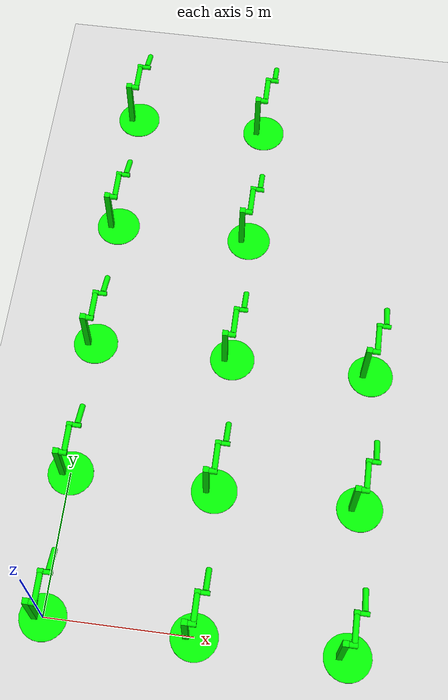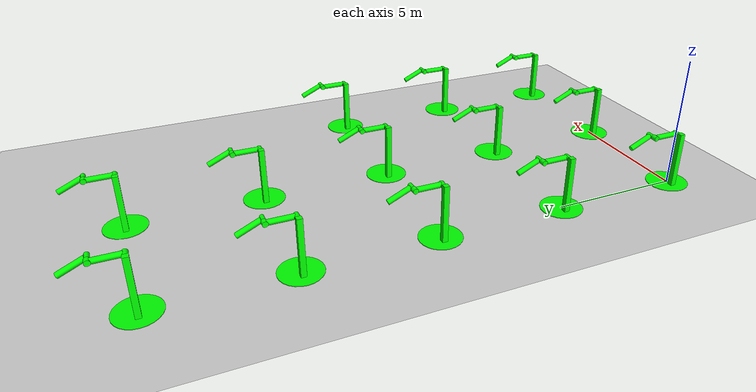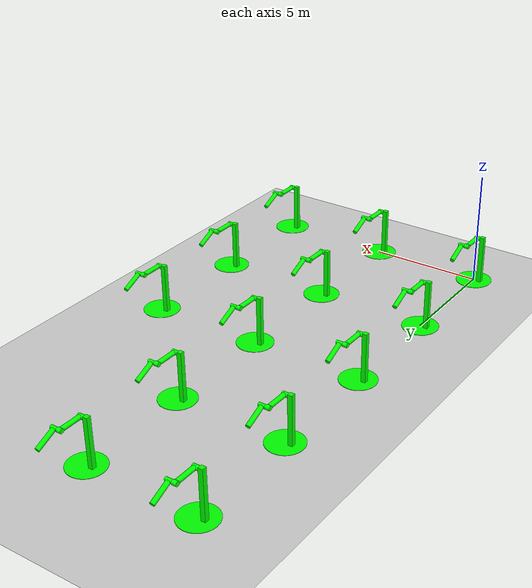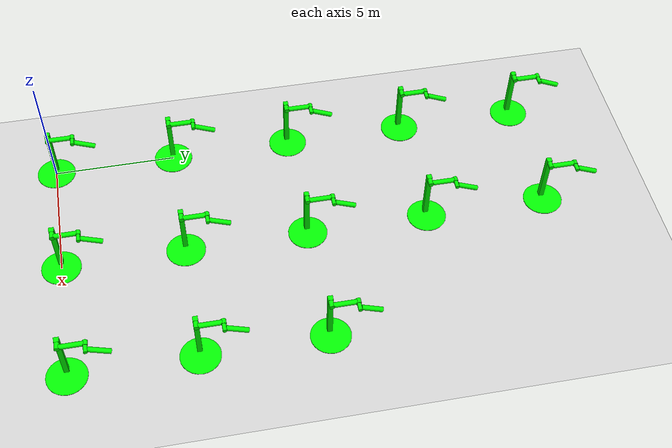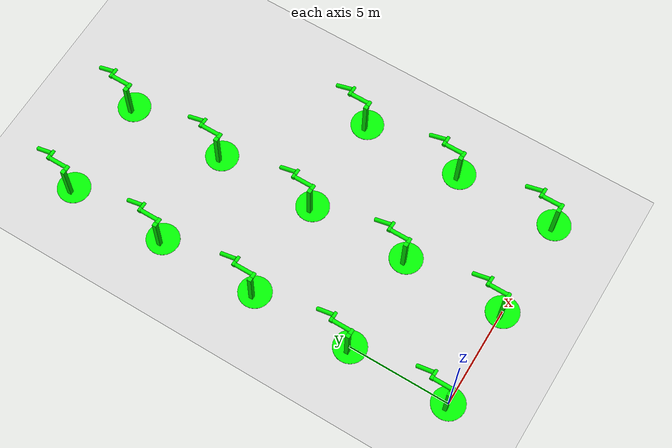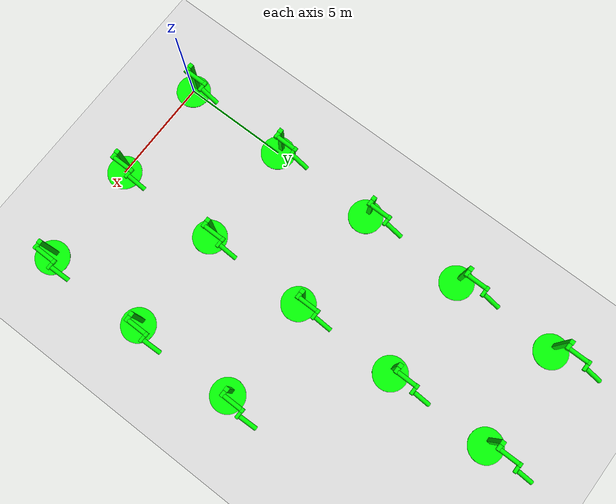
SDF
<sdf version="1.6">
 <world name="double_pendulums">
  <model name="ground_plane">
   <static>true</static>
   <link name="link">
    <collision name="collision">
     <geometry><plane><normal>0 0 1</normal><size>100 100</size></plane></geometry>
    </collision>
    <visual name="visual">
     <geometry><plane><normal>0 0 1</normal><size>100 100</size></plane></geometry>
     <material>
      <ambient>0.8 0.8 0.8 1</ambient>
      <diffuse>0.8 0.8 0.8 1</diffuse>
      <specular>0.8 0.8 0.8 1</specular>
     </material>
    </visual>
   </link>
  </model>
  <model name="dbl_pendulum_5">
   <link name="base">
    <inertial><mass>100</mass></inertial>
    <visual name="vis_plate_on_ground">
     <pose>0 0 0.01 0 0 0</pose>
     <geometry><cylinder><radius>0.8</radius><length>0.02</length></cylinder></geometry>
     <material><ambient>0 1 0 1</ambient><diffuse>0 1 0 1</diffuse><specular>0 1 0 1</specular></material>
    </visual>
    <visual name="vis_pole">
     <pose>-0.275 0 1.1 0 0 0</pose>
     <geometry><box><size>0.2 0.2 2.2</size></box></geometry>
     <material><ambient>0 1 0 1</ambient><diffuse>0 1 0 1</diffuse><specular>0 1 0 1</specular></material>
    </visual>
    <collision name="col_plate_on_ground">
     <pose>0 0 0.01 0 0 0</pose>
     <geometry><cylinder><radius>0.8</radius><length>0.02</length></cylinder></geometry>
    </collision>
    <collision name="col_pole">
     <pose>-0.275 0 1.1 0 0 0</pose>
     <geometry><box><size>0.2 0.2 2.2</size></box></geometry>
    </collision>
   </link>
   <link name="upper_link">
    <pose>0 0 2.1 -1.5708 0 0</pose>
    <inertial><pose>0 0 0.5 0 0 0</pose></inertial>
    <visual name="vis_upper_joint">
     <pose>-0.05 0 0 0 1.5708 0</pose>
     <geometry><cylinder><radius>0.1</radius><length>0.3</length></cylinder></geometry>
     <material><ambient>0 1 0 1</ambient><diffuse>0 1 0 1</diffuse><specular>0 1 0 1</specular></material>
    </visual>
    <visual name="vis_lower_joint">
     <pose>0 0 1.0 0 1.5708 0</pose>
     <geometry><cylinder><radius>0.1</radius><length>0.2</length></cylinder></geometry>
     <material><ambient>0 1 0 1</ambient><diffuse>0 1 0 1</diffuse><specular>0 1 0 1</specular></material>
    </visual>
    <visual name="vis_cylinder">
     <pose>0 0 0.5 0 0 0</pose>
     <geometry><cylinder><radius>0.1</radius><length>0.9</length></cylinder></geometry>
     <material><ambient>0 1 0 1</ambient><diffuse>0 1 0 1</diffuse><specular>0 1 0 1</specular></material>
    </visual>
    <collision name="col_upper_joint">
     <pose>-0.05 0 0 0 1.5708 0</pose>
     <geometry><cylinder><radius>0.1</radius><length>0.3</length></cylinder></geometry>
    </collision>
    <collision name="col_lower_joint">
     <pose>0 0 1.0 0 1.5708 0</pose>
     <geometry><cylinder><radius>0.1</radius><length>0.2</length></cylinder></geometry>
    </collision>
    <collision name="col_cylinder">
     <pose>0 0 0.5 0 0 0</pose>
     <geometry><cylinder><radius>0.1</radius><length>0.9</length></cylinder></geometry>
    </collision>
   </link>
   <link name="lower_link">
    <pose>0.25 1.0 2.1 -2 0 0</pose>
    <inertial><pose>0 0 0.5 0 0 0</pose></inertial>
    <visual name="vis_lower_joint">
     <pose>0 0 0 0 1.5708 0</pose>
     <geometry><cylinder><radius>0.08</radius><length>0.3</length></cylinder></geometry>
     <material><ambient>0 1 0 1</ambient><diffuse>0 1 0 1</diffuse><specular>0 1 0 1</specular></material>
    </visual>
    <visual name="vis_cylinder">
     <pose>0 0 0.5 0 0 0</pose>
     <geometry><cylinder><radius>0.1</radius><length>0.9</length></cylinder></geometry>
     <material><ambient>0 1 0 1</ambient><diffuse>0 1 0 1</diffuse><specular>0 1 0 1</specular></material>
    </visual>
    <collision name="col_lower_joint">
     <pose>0 0 0 0 1.5708 0</pose>
     <geometry><cylinder><radius>0.08</radius><length>0.3</length></cylinder></geometry>
    </collision>
    <collision name="col_cylinder">
     <pose>0 0 0.5 0 0 0</pose>
     <geometry><cylinder><radius>0.1</radius><length>0.9</length></cylinder></geometry>
    </collision>
   </link>
   <joint name="upper_joint" type="revolute">
    <parent>base</parent>
    <child>upper_link</child>
    <axis><xyz>1.0 0 0</xyz></axis>
   </joint>
   <joint name="lower_joint" type="revolute">
    <parent>upper_link</parent>
    <child>lower_link</child>
    <axis><xyz>1.0 0 0</xyz></axis>
   </joint>
  </model>
  <model name="dbl_pendulum_6">
   <pose>5 0 0 0 0 0</pose>
   <link name="base">
    <inertial><mass>100</mass></inertial>
    <visual name="vis_plate_on_ground">
     <pose>0 0 0.01 0 0 0</pose>
     <geometry><cylinder><radius>0.8</radius><length>0.02</length></cylinder></geometry>
     <material><ambient>0 1 0 1</ambient><diffuse>0 1 0 1</diffuse><specular>0 1 0 1</specular></material>
    </visual>
    <visual name="vis_pole">
     <pose>-0.275 0 1.1 0 0 0</pose>
     <geometry><box><size>0.2 0.2 2.2</size></box></geometry>
     <material><ambient>0 1 0 1</ambient><diffuse>0 1 0 1</diffuse><specular>0 1 0 1</specular></material>
    </visual>
    <collision name="col_plate_on_ground">
     <pose>0 0 0.01 0 0 0</pose>
     <geometry><cylinder><radius>0.8</radius><length>0.02</length></cylinder></geometry>
    </collision>
    <collision name="col_pole">
     <pose>-0.275 0 1.1 0 0 0</pose>
     <geometry><box><size>0.2 0.2 2.2</size></box></geometry>
    </collision>
   </link>
   <link name="upper_link">
    <pose>0 0 2.1 -1.5708 0 0</pose>
    <inertial><pose>0 0 0.5 0 0 0</pose></inertial>
    <visual name="vis_upper_joint">
     <pose>-0.05 0 0 0 1.5708 0</pose>
     <geometry><cylinder><radius>0.1</radius><length>0.3</length></cylinder></geometry>
     <material><ambient>0 1 0 1</ambient><diffuse>0 1 0 1</diffuse><specular>0 1 0 1</specular></material>
    </visual>
    <visual name="vis_lower_joint">
     <pose>0 0 1.0 0 1.5708 0</pose>
     <geometry><cylinder><radius>0.1</radius><length>0.2</length></cylinder></geometry>
     <material><ambient>0 1 0 1</ambient><diffuse>0 1 0 1</diffuse><specular>0 1 0 1</specular></material>
    </visual>
    <visual name="vis_cylinder">
     <pose>0 0 0.5 0 0 0</pose>
     <geometry><cylinder><radius>0.1</radius><length>0.9</length></cylinder></geometry>
     <material><ambient>0 1 0 1</ambient><diffuse>0 1 0 1</diffuse><specular>0 1 0 1</specular></material>
    </visual>
    <collision name="col_upper_joint">
     <pose>-0.05 0 0 0 1.5708 0</pose>
     <geometry><cylinder><radius>0.1</radius><length>0.3</length></cylinder></geometry>
    </collision>
    <collision name="col_lower_joint">
     <pose>0 0 1.0 0 1.5708 0</pose>
     <geometry><cylinder><radius>0.1</radius><length>0.2</length></cylinder></geometry>
    </collision>
    <collision name="col_cylinder">
     <pose>0 0 0.5 0 0 0</pose>
     <geometry><cylinder><radius>0.1</radius><length>0.9</length></cylinder></geometry>
    </collision>
   </link>
   <link name="lower_link">
    <pose>0.25 1.0 2.1 -2 0 0</pose>
    <inertial><pose>0 0 0.5 0 0 0</pose></inertial>
    <visual name="vis_lower_joint">
     <pose>0 0 0 0 1.5708 0</pose>
     <geometry><cylinder><radius>0.08</radius><length>0.3</length></cylinder></geometry>
     <material><ambient>0 1 0 1</ambient><diffuse>0 1 0 1</diffuse><specular>0 1 0 1</specular></material>
    </visual>
    <visual name="vis_cylinder">
     <pose>0 0 0.5 0 0 0</pose>
     <geometry><cylinder><radius>0.1</radius><length>0.9</length></cylinder></geometry>
     <material><ambient>0 1 0 1</ambient><diffuse>0 1 0 1</diffuse><specular>0 1 0 1</specular></material>
    </visual>
    <collision name="col_lower_joint">
     <pose>0 0 0 0 1.5708 0</pose>
     <geometry><cylinder><radius>0.08</radius><length>0.3</length></cylinder></geometry>
    </collision>
    <collision name="col_cylinder">
     <pose>0 0 0.5 0 0 0</pose>
     <geometry><cylinder><radius>0.1</radius><length>0.9</length></cylinder></geometry>
    </collision>
   </link>
   <joint name="upper_joint" type="revolute">
    <parent>base</parent>
    <child>upper_link</child>
    <axis><xyz>1.0 0 0</xyz></axis>
   </joint>
   <joint name="lower_joint" type="revolute">
    <parent>upper_link</parent>
    <child>lower_link</child>
    <axis><xyz>1.0 0 0</xyz></axis>
   </joint>
  </model>
  <model name="dbl_pendulum_7">
   <pose>10 0 0 0 0 0</pose>
   <link name="base">
    <inertial><mass>100</mass></inertial>
    <visual name="vis_plate_on_ground">
     <pose>0 0 0.01 0 0 0</pose>
     <geometry><cylinder><radius>0.8</radius><length>0.02</length></cylinder></geometry>
     <material><ambient>0 1 0 1</ambient><diffuse>0 1 0 1</diffuse><specular>0 1 0 1</specular></material>
    </visual>
    <visual name="vis_pole">
     <pose>-0.275 0 1.1 0 0 0</pose>
     <geometry><box><size>0.2 0.2 2.2</size></box></geometry>
     <material><ambient>0 1 0 1</ambient><diffuse>0 1 0 1</diffuse><specular>0 1 0 1</specular></material>
    </visual>
    <collision name="col_plate_on_ground">
     <pose>0 0 0.01 0 0 0</pose>
     <geometry><cylinder><radius>0.8</radius><length>0.02</length></cylinder></geometry>
    </collision>
    <collision name="col_pole">
     <pose>-0.275 0 1.1 0 0 0</pose>
     <geometry><box><size>0.2 0.2 2.2</size></box></geometry>
    </collision>
   </link>
   <link name="upper_link">
    <pose>0 0 2.1 -1.5708 0 0</pose>
    <inertial><pose>0 0 0.5 0 0 0</pose></inertial>
    <visual name="vis_upper_joint">
     <pose>-0.05 0 0 0 1.5708 0</pose>
     <geometry><cylinder><radius>0.1</radius><length>0.3</length></cylinder></geometry>
     <material><ambient>0 1 0 1</ambient><diffuse>0 1 0 1</diffuse><specular>0 1 0 1</specular></material>
    </visual>
    <visual name="vis_lower_joint">
     <pose>0 0 1.0 0 1.5708 0</pose>
     <geometry><cylinder><radius>0.1</radius><length>0.2</length></cylinder></geometry>
     <material><ambient>0 1 0 1</ambient><diffuse>0 1 0 1</diffuse><specular>0 1 0 1</specular></material>
    </visual>
    <visual name="vis_cylinder">
     <pose>0 0 0.5 0 0 0</pose>
     <geometry><cylinder><radius>0.1</radius><length>0.9</length></cylinder></geometry>
     <material><ambient>0 1 0 1</ambient><diffuse>0 1 0 1</diffuse><specular>0 1 0 1</specular></material>
    </visual>
    <collision name="col_upper_joint">
     <pose>-0.05 0 0 0 1.5708 0</pose>
     <geometry><cylinder><radius>0.1</radius><length>0.3</length></cylinder></geometry>
    </collision>
    <collision name="col_lower_joint">
     <pose>0 0 1.0 0 1.5708 0</pose>
     <geometry><cylinder><radius>0.1</radius><length>0.2</length></cylinder></geometry>
    </collision>
    <collision name="col_cylinder">
     <pose>0 0 0.5 0 0 0</pose>
     <geometry><cylinder><radius>0.1</radius><length>0.9</length></cylinder></geometry>
    </collision>
   </link>
   <link name="lower_link">
    <pose>0.25 1.0 2.1 -2 0 0</pose>
    <inertial><pose>0 0 0.5 0 0 0</pose></inertial>
    <visual name="vis_lower_joint">
     <pose>0 0 0 0 1.5708 0</pose>
     <geometry><cylinder><radius>0.08</radius><length>0.3</length></cylinder></geometry>
     <material><ambient>0 1 0 1</ambient><diffuse>0 1 0 1</diffuse><specular>0 1 0 1</specular></material>
    </visual>
    <visual name="vis_cylinder">
     <pose>0 0 0.5 0 0 0</pose>
     <geometry><cylinder><radius>0.1</radius><length>0.9</length></cylinder></geometry>
     <material><ambient>0 1 0 1</ambient><diffuse>0 1 0 1</diffuse><specular>0 1 0 1</specular></material>
    </visual>
    <collision name="col_lower_joint">
     <pose>0 0 0 0 1.5708 0</pose>
     <geometry><cylinder><radius>0.08</radius><length>0.3</length></cylinder></geometry>
    </collision>
    <collision name="col_cylinder">
     <pose>0 0 0.5 0 0 0</pose>
     <geometry><cylinder><radius>0.1</radius><length>0.9</length></cylinder></geometry>
    </collision>
   </link>
   <joint name="upper_joint" type="revolute">
    <parent>base</parent>
    <child>upper_link</child>
    <axis><xyz>1.0 0 0</xyz></axis>
   </joint>
   <joint name="lower_joint" type="revolute">
    <parent>upper_link</parent>
    <child>lower_link</child>
    <axis><xyz>1.0 0 0</xyz></axis>
   </joint>
  </model>
  <model name="dbl_pendulum_15">
   <pose>0 5 0 0 0 0</pose>
   <link name="base">
    <inertial><mass>100</mass></inertial>
    <visual name="vis_plate_on_ground">
     <pose>0 0 0.01 0 0 0</pose>
     <geometry><cylinder><radius>0.8</radius><length>0.02</length></cylinder></geometry>
     <material><ambient>0 1 0 1</ambient><diffuse>0 1 0 1</diffuse><specular>0 1 0 1</specular></material>
    </visual>
    <visual name="vis_pole">
     <pose>-0.275 0 1.1 0 0 0</pose>
     <geometry><box><size>0.2 0.2 2.2</size></box></geometry>
     <material><ambient>0 1 0 1</ambient><diffuse>0 1 0 1</diffuse><specular>0 1 0 1</specular></material>
    </visual>
    <collision name="col_plate_on_ground">
     <pose>0 0 0.01 0 0 0</pose>
     <geometry><cylinder><radius>0.8</radius><length>0.02</length></cylinder></geometry>
    </collision>
    <collision name="col_pole">
     <pose>-0.275 0 1.1 0 0 0</pose>
     <geometry><box><size>0.2 0.2 2.2</size></box></geometry>
    </collision>
   </link>
   <link name="upper_link">
    <pose>0 0 2.1 -1.5708 0 0</pose>
    <inertial><pose>0 0 0.5 0 0 0</pose></inertial>
    <visual name="vis_upper_joint">
     <pose>-0.05 0 0 0 1.5708 0</pose>
     <geometry><cylinder><radius>0.1</radius><length>0.3</length></cylinder></geometry>
     <material><ambient>0 1 0 1</ambient><diffuse>0 1 0 1</diffuse><specular>0 1 0 1</specular></material>
    </visual>
    <visual name="vis_lower_joint">
     <pose>0 0 1.0 0 1.5708 0</pose>
     <geometry><cylinder><radius>0.1</radius><length>0.2</length></cylinder></geometry>
     <material><ambient>0 1 0 1</ambient><diffuse>0 1 0 1</diffuse><specular>0 1 0 1</specular></material>
    </visual>
    <visual name="vis_cylinder">
     <pose>0 0 0.5 0 0 0</pose>
     <geometry><cylinder><radius>0.1</radius><length>0.9</length></cylinder></geometry>
     <material><ambient>0 1 0 1</ambient><diffuse>0 1 0 1</diffuse><specular>0 1 0 1</specular></material>
    </visual>
    <collision name="col_upper_joint">
     <pose>-0.05 0 0 0 1.5708 0</pose>
     <geometry><cylinder><radius>0.1</radius><length>0.3</length></cylinder></geometry>
    </collision>
    <collision name="col_lower_joint">
     <pose>0 0 1.0 0 1.5708 0</pose>
     <geometry><cylinder><radius>0.1</radius><length>0.2</length></cylinder></geometry>
    </collision>
    <collision name="col_cylinder">
     <pose>0 0 0.5 0 0 0</pose>
     <geometry><cylinder><radius>0.1</radius><length>0.9</length></cylinder></geometry>
    </collision>
   </link>
   <link name="lower_link">
    <pose>0.25 1.0 2.1 -2 0 0</pose>
    <inertial><pose>0 0 0.5 0 0 0</pose></inertial>
    <visual name="vis_lower_joint">
     <pose>0 0 0 0 1.5708 0</pose>
     <geometry><cylinder><radius>0.08</radius><length>0.3</length></cylinder></geometry>
     <material><ambient>0 1 0 1</ambient><diffuse>0 1 0 1</diffuse><specular>0 1 0 1</specular></material>
    </visual>
    <visual name="vis_cylinder">
     <pose>0 0 0.5 0 0 0</pose>
     <geometry><cylinder><radius>0.1</radius><length>0.9</length></cylinder></geometry>
     <material><ambient>0 1 0 1</ambient><diffuse>0 1 0 1</diffuse><specular>0 1 0 1</specular></material>
    </visual>
    <collision name="col_lower_joint">
     <pose>0 0 0 0 1.5708 0</pose>
     <geometry><cylinder><radius>0.08</radius><length>0.3</length></cylinder></geometry>
    </collision>
    <collision name="col_cylinder">
     <pose>0 0 0.5 0 0 0</pose>
     <geometry><cylinder><radius>0.1</radius><length>0.9</length></cylinder></geometry>
    </collision>
   </link>
   <joint name="upper_joint" type="revolute">
    <parent>base</parent>
    <child>upper_link</child>
    <axis><xyz>1.0 0 0</xyz></axis>
   </joint>
   <joint name="lower_joint" type="revolute">
    <parent>upper_link</parent>
    <child>lower_link</child>
    <axis><xyz>1.0 0 0</xyz></axis>
   </joint>
  </model>
  <model name="dbl_pendulum_16">
   <pose>5 5 0 0 0 0</pose>
   <link name="base">
    <inertial><mass>100</mass></inertial>
    <visual name="vis_plate_on_ground">
     <pose>0 0 0.01 0 0 0</pose>
     <geometry><cylinder><radius>0.8</radius><length>0.02</length></cylinder></geometry>
     <material><ambient>0 1 0 1</ambient><diffuse>0 1 0 1</diffuse><specular>0 1 0 1</specular></material>
    </visual>
    <visual name="vis_pole">
     <pose>-0.275 0 1.1 0 0 0</pose>
     <geometry><box><size>0.2 0.2 2.2</size></box></geometry>
     <material><ambient>0 1 0 1</ambient><diffuse>0 1 0 1</diffuse><specular>0 1 0 1</specular></material>
    </visual>
    <collision name="col_plate_on_ground">
     <pose>0 0 0.01 0 0 0</pose>
     <geometry><cylinder><radius>0.8</radius><length>0.02</length></cylinder></geometry>
    </collision>
    <collision name="col_pole">
     <pose>-0.275 0 1.1 0 0 0</pose>
     <geometry><box><size>0.2 0.2 2.2</size></box></geometry>
    </collision>
   </link>
   <link name="upper_link">
    <pose>0 0 2.1 -1.5708 0 0</pose>
    <inertial><pose>0 0 0.5 0 0 0</pose></inertial>
    <visual name="vis_upper_joint">
     <pose>-0.05 0 0 0 1.5708 0</pose>
     <geometry><cylinder><radius>0.1</radius><length>0.3</length></cylinder></geometry>
     <material><ambient>0 1 0 1</ambient><diffuse>0 1 0 1</diffuse><specular>0 1 0 1</specular></material>
    </visual>
    <visual name="vis_lower_joint">
     <pose>0 0 1.0 0 1.5708 0</pose>
     <geometry><cylinder><radius>0.1</radius><length>0.2</length></cylinder></geometry>
     <material><ambient>0 1 0 1</ambient><diffuse>0 1 0 1</diffuse><specular>0 1 0 1</specular></material>
    </visual>
    <visual name="vis_cylinder">
     <pose>0 0 0.5 0 0 0</pose>
     <geometry><cylinder><radius>0.1</radius><length>0.9</length></cylinder></geometry>
     <material><ambient>0 1 0 1</ambient><diffuse>0 1 0 1</diffuse><specular>0 1 0 1</specular></material>
    </visual>
    <collision name="col_upper_joint">
     <pose>-0.05 0 0 0 1.5708 0</pose>
     <geometry><cylinder><radius>0.1</radius><length>0.3</length></cylinder></geometry>
    </collision>
    <collision name="col_lower_joint">
     <pose>0 0 1.0 0 1.5708 0</pose>
     <geometry><cylinder><radius>0.1</radius><length>0.2</length></cylinder></geometry>
    </collision>
    <collision name="col_cylinder">
     <pose>0 0 0.5 0 0 0</pose>
     <geometry><cylinder><radius>0.1</radius><length>0.9</length></cylinder></geometry>
    </collision>
   </link>
   <link name="lower_link">
    <pose>0.25 1.0 2.1 -2 0 0</pose>
    <inertial><pose>0 0 0.5 0 0 0</pose></inertial>
    <visual name="vis_lower_joint">
     <pose>0 0 0 0 1.5708 0</pose>
     <geometry><cylinder><radius>0.08</radius><length>0.3</length></cylinder></geometry>
     <material><ambient>0 1 0 1</ambient><diffuse>0 1 0 1</diffuse><specular>0 1 0 1</specular></material>
    </visual>
    <visual name="vis_cylinder">
     <pose>0 0 0.5 0 0 0</pose>
     <geometry><cylinder><radius>0.1</radius><length>0.9</length></cylinder></geometry>
     <material><ambient>0 1 0 1</ambient><diffuse>0 1 0 1</diffuse><specular>0 1 0 1</specular></material>
    </visual>
    <collision name="col_lower_joint">
     <pose>0 0 0 0 1.5708 0</pose>
     <geometry><cylinder><radius>0.08</radius><length>0.3</length></cylinder></geometry>
    </collision>
    <collision name="col_cylinder">
     <pose>0 0 0.5 0 0 0</pose>
     <geometry><cylinder><radius>0.1</radius><length>0.9</length></cylinder></geometry>
    </collision>
   </link>
   <joint name="upper_joint" type="revolute">
    <parent>base</parent>
    <child>upper_link</child>
    <axis><xyz>1.0 0 0</xyz></axis>
   </joint>
   <joint name="lower_joint" type="revolute">
    <parent>upper_link</parent>
    <child>lower_link</child>
    <axis><xyz>1.0 0 0</xyz></axis>
   </joint>
  </model>
  <model name="dbl_pendulum_17">
   <pose>10 5 0 0 0 0</pose>
   <link name="base">
    <inertial><mass>100</mass></inertial>
    <visual name="vis_plate_on_ground">
     <pose>0 0 0.01 0 0 0</pose>
     <geometry><cylinder><radius>0.8</radius><length>0.02</length></cylinder></geometry>
     <material><ambient>0 1 0 1</ambient><diffuse>0 1 0 1</diffuse><specular>0 1 0 1</specular></material>
    </visual>
    <visual name="vis_pole">
     <pose>-0.275 0 1.1 0 0 0</pose>
     <geometry><box><size>0.2 0.2 2.2</size></box></geometry>
     <material><ambient>0 1 0 1</ambient><diffuse>0 1 0 1</diffuse><specular>0 1 0 1</specular></material>
    </visual>
    <collision name="col_plate_on_ground">
     <pose>0 0 0.01 0 0 0</pose>
     <geometry><cylinder><radius>0.8</radius><length>0.02</length></cylinder></geometry>
    </collision>
    <collision name="col_pole">
     <pose>-0.275 0 1.1 0 0 0</pose>
     <geometry><box><size>0.2 0.2 2.2</size></box></geometry>
    </collision>
   </link>
   <link name="upper_link">
    <pose>0 0 2.1 -1.5708 0 0</pose>
    <inertial><pose>0 0 0.5 0 0 0</pose></inertial>
    <visual name="vis_upper_joint">
     <pose>-0.05 0 0 0 1.5708 0</pose>
     <geometry><cylinder><radius>0.1</radius><length>0.3</length></cylinder></geometry>
     <material><ambient>0 1 0 1</ambient><diffuse>0 1 0 1</diffuse><specular>0 1 0 1</specular></material>
    </visual>
    <visual name="vis_lower_joint">
     <pose>0 0 1.0 0 1.5708 0</pose>
     <geometry><cylinder><radius>0.1</radius><length>0.2</length></cylinder></geometry>
     <material><ambient>0 1 0 1</ambient><diffuse>0 1 0 1</diffuse><specular>0 1 0 1</specular></material>
    </visual>
    <visual name="vis_cylinder">
     <pose>0 0 0.5 0 0 0</pose>
     <geometry><cylinder><radius>0.1</radius><length>0.9</length></cylinder></geometry>
     <material><ambient>0 1 0 1</ambient><diffuse>0 1 0 1</diffuse><specular>0 1 0 1</specular></material>
    </visual>
    <collision name="col_upper_joint">
     <pose>-0.05 0 0 0 1.5708 0</pose>
     <geometry><cylinder><radius>0.1</radius><length>0.3</length></cylinder></geometry>
    </collision>
    <collision name="col_lower_joint">
     <pose>0 0 1.0 0 1.5708 0</pose>
     <geometry><cylinder><radius>0.1</radius><length>0.2</length></cylinder></geometry>
    </collision>
    <collision name="col_cylinder">
     <pose>0 0 0.5 0 0 0</pose>
     <geometry><cylinder><radius>0.1</radius><length>0.9</length></cylinder></geometry>
    </collision>
   </link>
   <link name="lower_link">
    <pose>0.25 1.0 2.1 -2 0 0</pose>
    <inertial><pose>0 0 0.5 0 0 0</pose></inertial>
    <visual name="vis_lower_joint">
     <pose>0 0 0 0 1.5708 0</pose>
     <geometry><cylinder><radius>0.08</radius><length>0.3</length></cylinder></geometry>
     <material><ambient>0 1 0 1</ambient><diffuse>0 1 0 1</diffuse><specular>0 1 0 1</specular></material>
    </visual>
    <visual name="vis_cylinder">
     <pose>0 0 0.5 0 0 0</pose>
     <geometry><cylinder><radius>0.1</radius><length>0.9</length></cylinder></geometry>
     <material><ambient>0 1 0 1</ambient><diffuse>0 1 0 1</diffuse><specular>0 1 0 1</specular></material>
    </visual>
    <collision name="col_lower_joint">
     <pose>0 0 0 0 1.5708 0</pose>
     <geometry><cylinder><radius>0.08</radius><length>0.3</length></cylinder></geometry>
    </collision>
    <collision name="col_cylinder">
     <pose>0 0 0.5 0 0 0</pose>
     <geometry><cylinder><radius>0.1</radius><length>0.9</length></cylinder></geometry>
    </collision>
   </link>
   <joint name="upper_joint" type="revolute">
    <parent>base</parent>
    <child>upper_link</child>
    <axis><xyz>1.0 0 0</xyz></axis>
   </joint>
   <joint name="lower_joint" type="revolute">
    <parent>upper_link</parent>
    <child>lower_link</child>
    <axis><xyz>1.0 0 0</xyz></axis>
   </joint>
  </model>
  <model name="dbl_pendulum_25">
   <pose>0 10 0 0 0 0</pose>
   <link name="base">
    <inertial><mass>100</mass></inertial>
    <visual name="vis_plate_on_ground">
     <pose>0 0 0.01 0 0 0</pose>
     <geometry><cylinder><radius>0.8</radius><length>0.02</length></cylinder></geometry>
     <material><ambient>0 1 0 1</ambient><diffuse>0 1 0 1</diffuse><specular>0 1 0 1</specular></material>
    </visual>
    <visual name="vis_pole">
     <pose>-0.275 0 1.1 0 0 0</pose>
     <geometry><box><size>0.2 0.2 2.2</size></box></geometry>
     <material><ambient>0 1 0 1</ambient><diffuse>0 1 0 1</diffuse><specular>0 1 0 1</specular></material>
    </visual>
    <collision name="col_plate_on_ground">
     <pose>0 0 0.01 0 0 0</pose>
     <geometry><cylinder><radius>0.8</radius><length>0.02</length></cylinder></geometry>
    </collision>
    <collision name="col_pole">
     <pose>-0.275 0 1.1 0 0 0</pose>
     <geometry><box><size>0.2 0.2 2.2</size></box></geometry>
    </collision>
   </link>
   <link name="upper_link">
    <pose>0 0 2.1 -1.5708 0 0</pose>
    <inertial><pose>0 0 0.5 0 0 0</pose></inertial>
    <visual name="vis_upper_joint">
     <pose>-0.05 0 0 0 1.5708 0</pose>
     <geometry><cylinder><radius>0.1</radius><length>0.3</length></cylinder></geometry>
     <material><ambient>0 1 0 1</ambient><diffuse>0 1 0 1</diffuse><specular>0 1 0 1</specular></material>
    </visual>
    <visual name="vis_lower_joint">
     <pose>0 0 1.0 0 1.5708 0</pose>
     <geometry><cylinder><radius>0.1</radius><length>0.2</length></cylinder></geometry>
     <material><ambient>0 1 0 1</ambient><diffuse>0 1 0 1</diffuse><specular>0 1 0 1</specular></material>
    </visual>
    <visual name="vis_cylinder">
     <pose>0 0 0.5 0 0 0</pose>
     <geometry><cylinder><radius>0.1</radius><length>0.9</length></cylinder></geometry>
     <material><ambient>0 1 0 1</ambient><diffuse>0 1 0 1</diffuse><specular>0 1 0 1</specular></material>
    </visual>
    <collision name="col_upper_joint">
     <pose>-0.05 0 0 0 1.5708 0</pose>
     <geometry><cylinder><radius>0.1</radius><length>0.3</length></cylinder></geometry>
    </collision>
    <collision name="col_lower_joint">
     <pose>0 0 1.0 0 1.5708 0</pose>
     <geometry><cylinder><radius>0.1</radius><length>0.2</length></cylinder></geometry>
    </collision>
    <collision name="col_cylinder">
     <pose>0 0 0.5 0 0 0</pose>
     <geometry><cylinder><radius>0.1</radius><length>0.9</length></cylinder></geometry>
    </collision>
   </link>
   <link name="lower_link">
    <pose>0.25 1.0 2.1 -2 0 0</pose>
    <inertial><pose>0 0 0.5 0 0 0</pose></inertial>
    <visual name="vis_lower_joint">
     <pose>0 0 0 0 1.5708 0</pose>
     <geometry><cylinder><radius>0.08</radius><length>0.3</length></cylinder></geometry>
     <material><ambient>0 1 0 1</ambient><diffuse>0 1 0 1</diffuse><specular>0 1 0 1</specular></material>
    </visual>
    <visual name="vis_cylinder">
     <pose>0 0 0.5 0 0 0</pose>
     <geometry><cylinder><radius>0.1</radius><length>0.9</length></cylinder></geometry>
     <material><ambient>0 1 0 1</ambient><diffuse>0 1 0 1</diffuse><specular>0 1 0 1</specular></material>
    </visual>
    <collision name="col_lower_joint">
     <pose>0 0 0 0 1.5708 0</pose>
     <geometry><cylinder><radius>0.08</radius><length>0.3</length></cylinder></geometry>
    </collision>
    <collision name="col_cylinder">
     <pose>0 0 0.5 0 0 0</pose>
     <geometry><cylinder><radius>0.1</radius><length>0.9</length></cylinder></geometry>
    </collision>
   </link>
   <joint name="upper_joint" type="revolute">
    <parent>base</parent>
    <child>upper_link</child>
    <axis><xyz>1.0 0 0</xyz></axis>
   </joint>
   <joint name="lower_joint" type="revolute">
    <parent>upper_link</parent>
    <child>lower_link</child>
    <axis><xyz>1.0 0 0</xyz></axis>
   </joint>
  </model>
  <model name="dbl_pendulum_26">
   <pose>5 10 0 0 0 0</pose>
   <link name="base">
    <inertial><mass>100</mass></inertial>
    <visual name="vis_plate_on_ground">
     <pose>0 0 0.01 0 0 0</pose>
     <geometry><cylinder><radius>0.8</radius><length>0.02</length></cylinder></geometry>
     <material><ambient>0 1 0 1</ambient><diffuse>0 1 0 1</diffuse><specular>0 1 0 1</specular></material>
    </visual>
    <visual name="vis_pole">
     <pose>-0.275 0 1.1 0 0 0</pose>
     <geometry><box><size>0.2 0.2 2.2</size></box></geometry>
     <material><ambient>0 1 0 1</ambient><diffuse>0 1 0 1</diffuse><specular>0 1 0 1</specular></material>
    </visual>
    <collision name="col_plate_on_ground">
     <pose>0 0 0.01 0 0 0</pose>
     <geometry><cylinder><radius>0.8</radius><length>0.02</length></cylinder></geometry>
    </collision>
    <collision name="col_pole">
     <pose>-0.275 0 1.1 0 0 0</pose>
     <geometry><box><size>0.2 0.2 2.2</size></box></geometry>
    </collision>
   </link>
   <link name="upper_link">
    <pose>0 0 2.1 -1.5708 0 0</pose>
    <inertial><pose>0 0 0.5 0 0 0</pose></inertial>
    <visual name="vis_upper_joint">
     <pose>-0.05 0 0 0 1.5708 0</pose>
     <geometry><cylinder><radius>0.1</radius><length>0.3</length></cylinder></geometry>
     <material><ambient>0 1 0 1</ambient><diffuse>0 1 0 1</diffuse><specular>0 1 0 1</specular></material>
    </visual>
    <visual name="vis_lower_joint">
     <pose>0 0 1.0 0 1.5708 0</pose>
     <geometry><cylinder><radius>0.1</radius><length>0.2</length></cylinder></geometry>
     <material><ambient>0 1 0 1</ambient><diffuse>0 1 0 1</diffuse><specular>0 1 0 1</specular></material>
    </visual>
    <visual name="vis_cylinder">
     <pose>0 0 0.5 0 0 0</pose>
     <geometry><cylinder><radius>0.1</radius><length>0.9</length></cylinder></geometry>
     <material><ambient>0 1 0 1</ambient><diffuse>0 1 0 1</diffuse><specular>0 1 0 1</specular></material>
    </visual>
    <collision name="col_upper_joint">
     <pose>-0.05 0 0 0 1.5708 0</pose>
     <geometry><cylinder><radius>0.1</radius><length>0.3</length></cylinder></geometry>
    </collision>
    <collision name="col_lower_joint">
     <pose>0 0 1.0 0 1.5708 0</pose>
     <geometry><cylinder><radius>0.1</radius><length>0.2</length></cylinder></geometry>
    </collision>
    <collision name="col_cylinder">
     <pose>0 0 0.5 0 0 0</pose>
     <geometry><cylinder><radius>0.1</radius><length>0.9</length></cylinder></geometry>
    </collision>
   </link>
   <link name="lower_link">
    <pose>0.25 1.0 2.1 -2 0 0</pose>
    <inertial><pose>0 0 0.5 0 0 0</pose></inertial>
    <visual name="vis_lower_joint">
     <pose>0 0 0 0 1.5708 0</pose>
     <geometry><cylinder><radius>0.08</radius><length>0.3</length></cylinder></geometry>
     <material><ambient>0 1 0 1</ambient><diffuse>0 1 0 1</diffuse><specular>0 1 0 1</specular></material>
    </visual>
    <visual name="vis_cylinder">
     <pose>0 0 0.5 0 0 0</pose>
     <geometry><cylinder><radius>0.1</radius><length>0.9</length></cylinder></geometry>
     <material><ambient>0 1 0 1</ambient><diffuse>0 1 0 1</diffuse><specular>0 1 0 1</specular></material>
    </visual>
    <collision name="col_lower_joint">
     <pose>0 0 0 0 1.5708 0</pose>
     <geometry><cylinder><radius>0.08</radius><length>0.3</length></cylinder></geometry>
    </collision>
    <collision name="col_cylinder">
     <pose>0 0 0.5 0 0 0</pose>
     <geometry><cylinder><radius>0.1</radius><length>0.9</length></cylinder></geometry>
    </collision>
   </link>
   <joint name="upper_joint" type="revolute">
    <parent>base</parent>
    <child>upper_link</child>
    <axis><xyz>1.0 0 0</xyz></axis>
   </joint>
   <joint name="lower_joint" type="revolute">
    <parent>upper_link</parent>
    <child>lower_link</child>
    <axis><xyz>1.0 0 0</xyz></axis>
   </joint>
  </model>
  <model name="dbl_pendulum_27">
   <pose>10 10 0 0 0 0</pose>
   <link name="base">
    <inertial><mass>100</mass></inertial>
    <visual name="vis_plate_on_ground">
     <pose>0 0 0.01 0 0 0</pose>
     <geometry><cylinder><radius>0.8</radius><length>0.02</length></cylinder></geometry>
     <material><ambient>0 1 0 1</ambient><diffuse>0 1 0 1</diffuse><specular>0 1 0 1</specular></material>
    </visual>
    <visual name="vis_pole">
     <pose>-0.275 0 1.1 0 0 0</pose>
     <geometry><box><size>0.2 0.2 2.2</size></box></geometry>
     <material><ambient>0 1 0 1</ambient><diffuse>0 1 0 1</diffuse><specular>0 1 0 1</specular></material>
    </visual>
    <collision name="col_plate_on_ground">
     <pose>0 0 0.01 0 0 0</pose>
     <geometry><cylinder><radius>0.8</radius><length>0.02</length></cylinder></geometry>
    </collision>
    <collision name="col_pole">
     <pose>-0.275 0 1.1 0 0 0</pose>
     <geometry><box><size>0.2 0.2 2.2</size></box></geometry>
    </collision>
   </link>
   <link name="upper_link">
    <pose>0 0 2.1 -1.5708 0 0</pose>
    <inertial><pose>0 0 0.5 0 0 0</pose></inertial>
    <visual name="vis_upper_joint">
     <pose>-0.05 0 0 0 1.5708 0</pose>
     <geometry><cylinder><radius>0.1</radius><length>0.3</length></cylinder></geometry>
     <material><ambient>0 1 0 1</ambient><diffuse>0 1 0 1</diffuse><specular>0 1 0 1</specular></material>
    </visual>
    <visual name="vis_lower_joint">
     <pose>0 0 1.0 0 1.5708 0</pose>
     <geometry><cylinder><radius>0.1</radius><length>0.2</length></cylinder></geometry>
     <material><ambient>0 1 0 1</ambient><diffuse>0 1 0 1</diffuse><specular>0 1 0 1</specular></material>
    </visual>
    <visual name="vis_cylinder">
     <pose>0 0 0.5 0 0 0</pose>
     <geometry><cylinder><radius>0.1</radius><length>0.9</length></cylinder></geometry>
     <material><ambient>0 1 0 1</ambient><diffuse>0 1 0 1</diffuse><specular>0 1 0 1</specular></material>
    </visual>
    <collision name="col_upper_joint">
     <pose>-0.05 0 0 0 1.5708 0</pose>
     <geometry><cylinder><radius>0.1</radius><length>0.3</length></cylinder></geometry>
    </collision>
    <collision name="col_lower_joint">
     <pose>0 0 1.0 0 1.5708 0</pose>
     <geometry><cylinder><radius>0.1</radius><length>0.2</length></cylinder></geometry>
    </collision>
    <collision name="col_cylinder">
     <pose>0 0 0.5 0 0 0</pose>
     <geometry><cylinder><radius>0.1</radius><length>0.9</length></cylinder></geometry>
    </collision>
   </link>
   <link name="lower_link">
    <pose>0.25 1.0 2.1 -2 0 0</pose>
    <inertial><pose>0 0 0.5 0 0 0</pose></inertial>
    <visual name="vis_lower_joint">
     <pose>0 0 0 0 1.5708 0</pose>
     <geometry><cylinder><radius>0.08</radius><length>0.3</length></cylinder></geometry>
     <material><ambient>0 1 0 1</ambient><diffuse>0 1 0 1</diffuse><specular>0 1 0 1</specular></material>
    </visual>
    <visual name="vis_cylinder">
     <pose>0 0 0.5 0 0 0</pose>
     <geometry><cylinder><radius>0.1</radius><length>0.9</length></cylinder></geometry>
     <material><ambient>0 1 0 1</ambient><diffuse>0 1 0 1</diffuse><specular>0 1 0 1</specular></material>
    </visual>
    <collision name="col_lower_joint">
     <pose>0 0 0 0 1.5708 0</pose>
     <geometry><cylinder><radius>0.08</radius><length>0.3</length></cylinder></geometry>
    </collision>
    <collision name="col_cylinder">
     <pose>0 0 0.5 0 0 0</pose>
     <geometry><cylinder><radius>0.1</radius><length>0.9</length></cylinder></geometry>
    </collision>
   </link>
   <joint name="upper_joint" type="revolute">
    <parent>base</parent>
    <child>upper_link</child>
    <axis><xyz>1.0 0 0</xyz></axis>
   </joint>
   <joint name="lower_joint" type="revolute">
    <parent>upper_link</parent>
    <child>lower_link</child>
    <axis><xyz>1.0 0 0</xyz></axis>
   </joint>
  </model>
  <model name="dbl_pendulum_35">
   <pose>0 15 0 0 0 0</pose>
   <link name="base">
    <inertial><mass>100</mass></inertial>
    <visual name="vis_plate_on_ground">
     <pose>0 0 0.01 0 0 0</pose>
     <geometry><cylinder><radius>0.8</radius><length>0.02</length></cylinder></geometry>
     <material><ambient>0 1 0 1</ambient><diffuse>0 1 0 1</diffuse><specular>0 1 0 1</specular></material>
    </visual>
    <visual name="vis_pole">
     <pose>-0.275 0 1.1 0 0 0</pose>
     <geometry><box><size>0.2 0.2 2.2</size></box></geometry>
     <material><ambient>0 1 0 1</ambient><diffuse>0 1 0 1</diffuse><specular>0 1 0 1</specular></material>
    </visual>
    <collision name="col_plate_on_ground">
     <pose>0 0 0.01 0 0 0</pose>
     <geometry><cylinder><radius>0.8</radius><length>0.02</length></cylinder></geometry>
    </collision>
    <collision name="col_pole">
     <pose>-0.275 0 1.1 0 0 0</pose>
     <geometry><box><size>0.2 0.2 2.2</size></box></geometry>
    </collision>
   </link>
   <link name="upper_link">
    <pose>0 0 2.1 -1.5708 0 0</pose>
    <inertial><pose>0 0 0.5 0 0 0</pose></inertial>
    <visual name="vis_upper_joint">
     <pose>-0.05 0 0 0 1.5708 0</pose>
     <geometry><cylinder><radius>0.1</radius><length>0.3</length></cylinder></geometry>
     <material><ambient>0 1 0 1</ambient><diffuse>0 1 0 1</diffuse><specular>0 1 0 1</specular></material>
    </visual>
    <visual name="vis_lower_joint">
     <pose>0 0 1.0 0 1.5708 0</pose>
     <geometry><cylinder><radius>0.1</radius><length>0.2</length></cylinder></geometry>
     <material><ambient>0 1 0 1</ambient><diffuse>0 1 0 1</diffuse><specular>0 1 0 1</specular></material>
    </visual>
    <visual name="vis_cylinder">
     <pose>0 0 0.5 0 0 0</pose>
     <geometry><cylinder><radius>0.1</radius><length>0.9</length></cylinder></geometry>
     <material><ambient>0 1 0 1</ambient><diffuse>0 1 0 1</diffuse><specular>0 1 0 1</specular></material>
    </visual>
    <collision name="col_upper_joint">
     <pose>-0.05 0 0 0 1.5708 0</pose>
     <geometry><cylinder><radius>0.1</radius><length>0.3</length></cylinder></geometry>
    </collision>
    <collision name="col_lower_joint">
     <pose>0 0 1.0 0 1.5708 0</pose>
     <geometry><cylinder><radius>0.1</radius><length>0.2</length></cylinder></geometry>
    </collision>
    <collision name="col_cylinder">
     <pose>0 0 0.5 0 0 0</pose>
     <geometry><cylinder><radius>0.1</radius><length>0.9</length></cylinder></geometry>
    </collision>
   </link>
   <link name="lower_link">
    <pose>0.25 1.0 2.1 -2 0 0</pose>
    <inertial><pose>0 0 0.5 0 0 0</pose></inertial>
    <visual name="vis_lower_joint">
     <pose>0 0 0 0 1.5708 0</pose>
     <geometry><cylinder><radius>0.08</radius><length>0.3</length></cylinder></geometry>
     <material><ambient>0 1 0 1</ambient><diffuse>0 1 0 1</diffuse><specular>0 1 0 1</specular></material>
    </visual>
    <visual name="vis_cylinder">
     <pose>0 0 0.5 0 0 0</pose>
     <geometry><cylinder><radius>0.1</radius><length>0.9</length></cylinder></geometry>
     <material><ambient>0 1 0 1</ambient><diffuse>0 1 0 1</diffuse><specular>0 1 0 1</specular></material>
    </visual>
    <collision name="col_lower_joint">
     <pose>0 0 0 0 1.5708 0</pose>
     <geometry><cylinder><radius>0.08</radius><length>0.3</length></cylinder></geometry>
    </collision>
    <collision name="col_cylinder">
     <pose>0 0 0.5 0 0 0</pose>
     <geometry><cylinder><radius>0.1</radius><length>0.9</length></cylinder></geometry>
    </collision>
   </link>
   <joint name="upper_joint" type="revolute">
    <parent>base</parent>
    <child>upper_link</child>
    <axis><xyz>1.0 0 0</xyz></axis>
   </joint>
   <joint name="lower_joint" type="revolute">
    <parent>upper_link</parent>
    <child>lower_link</child>
    <axis><xyz>1.0 0 0</xyz></axis>
   </joint>
  </model>
  <model name="dbl_pendulum_36">
   <pose>5 15 0 0 0 0</pose>
   <link name="base">
    <inertial><mass>100</mass></inertial>
    <visual name="vis_plate_on_ground">
     <pose>0 0 0.01 0 0 0</pose>
     <geometry><cylinder><radius>0.8</radius><length>0.02</length></cylinder></geometry>
     <material><ambient>0 1 0 1</ambient><diffuse>0 1 0 1</diffuse><specular>0 1 0 1</specular></material>
    </visual>
    <visual name="vis_pole">
     <pose>-0.275 0 1.1 0 0 0</pose>
     <geometry><box><size>0.2 0.2 2.2</size></box></geometry>
     <material><ambient>0 1 0 1</ambient><diffuse>0 1 0 1</diffuse><specular>0 1 0 1</specular></material>
    </visual>
    <collision name="col_plate_on_ground">
     <pose>0 0 0.01 0 0 0</pose>
     <geometry><cylinder><radius>0.8</radius><length>0.02</length></cylinder></geometry>
    </collision>
    <collision name="col_pole">
     <pose>-0.275 0 1.1 0 0 0</pose>
     <geometry><box><size>0.2 0.2 2.2</size></box></geometry>
    </collision>
   </link>
   <link name="upper_link">
    <pose>0 0 2.1 -1.5708 0 0</pose>
    <inertial><pose>0 0 0.5 0 0 0</pose></inertial>
    <visual name="vis_upper_joint">
     <pose>-0.05 0 0 0 1.5708 0</pose>
     <geometry><cylinder><radius>0.1</radius><length>0.3</length></cylinder></geometry>
     <material><ambient>0 1 0 1</ambient><diffuse>0 1 0 1</diffuse><specular>0 1 0 1</specular></material>
    </visual>
    <visual name="vis_lower_joint">
     <pose>0 0 1.0 0 1.5708 0</pose>
     <geometry><cylinder><radius>0.1</radius><length>0.2</length></cylinder></geometry>
     <material><ambient>0 1 0 1</ambient><diffuse>0 1 0 1</diffuse><specular>0 1 0 1</specular></material>
    </visual>
    <visual name="vis_cylinder">
     <pose>0 0 0.5 0 0 0</pose>
     <geometry><cylinder><radius>0.1</radius><length>0.9</length></cylinder></geometry>
     <material><ambient>0 1 0 1</ambient><diffuse>0 1 0 1</diffuse><specular>0 1 0 1</specular></material>
    </visual>
    <collision name="col_upper_joint">
     <pose>-0.05 0 0 0 1.5708 0</pose>
     <geometry><cylinder><radius>0.1</radius><length>0.3</length></cylinder></geometry>
    </collision>
    <collision name="col_lower_joint">
     <pose>0 0 1.0 0 1.5708 0</pose>
     <geometry><cylinder><radius>0.1</radius><length>0.2</length></cylinder></geometry>
    </collision>
    <collision name="col_cylinder">
     <pose>0 0 0.5 0 0 0</pose>
     <geometry><cylinder><radius>0.1</radius><length>0.9</length></cylinder></geometry>
    </collision>
   </link>
   <link name="lower_link">
    <pose>0.25 1.0 2.1 -2 0 0</pose>
    <inertial><pose>0 0 0.5 0 0 0</pose></inertial>
    <visual name="vis_lower_joint">
     <pose>0 0 0 0 1.5708 0</pose>
     <geometry><cylinder><radius>0.08</radius><length>0.3</length></cylinder></geometry>
     <material><ambient>0 1 0 1</ambient><diffuse>0 1 0 1</diffuse><specular>0 1 0 1</specular></material>
    </visual>
    <visual name="vis_cylinder">
     <pose>0 0 0.5 0 0 0</pose>
     <geometry><cylinder><radius>0.1</radius><length>0.9</length></cylinder></geometry>
     <material><ambient>0 1 0 1</ambient><diffuse>0 1 0 1</diffuse><specular>0 1 0 1</specular></material>
    </visual>
    <collision name="col_lower_joint">
     <pose>0 0 0 0 1.5708 0</pose>
     <geometry><cylinder><radius>0.08</radius><length>0.3</length></cylinder></geometry>
    </collision>
    <collision name="col_cylinder">
     <pose>0 0 0.5 0 0 0</pose>
     <geometry><cylinder><radius>0.1</radius><length>0.9</length></cylinder></geometry>
    </collision>
   </link>
   <joint name="upper_joint" type="revolute">
    <parent>base</parent>
    <child>upper_link</child>
    <axis><xyz>1.0 0 0</xyz></axis>
   </joint>
   <joint name="lower_joint" type="revolute">
    <parent>upper_link</parent>
    <child>lower_link</child>
    <axis><xyz>1.0 0 0</xyz></axis>
   </joint>
  </model>
  <model name="dbl_pendulum_45">
   <pose>0 20 0 0 0 0</pose>
   <link name="base">
    <inertial><mass>100</mass></inertial>
    <visual name="vis_plate_on_ground">
     <pose>0 0 0.01 0 0 0</pose>
     <geometry><cylinder><radius>0.8</radius><length>0.02</length></cylinder></geometry>
     <material><ambient>0 1 0 1</ambient><diffuse>0 1 0 1</diffuse><specular>0 1 0 1</specular></material>
    </visual>
    <visual name="vis_pole">
     <pose>-0.275 0 1.1 0 0 0</pose>
     <geometry><box><size>0.2 0.2 2.2</size></box></geometry>
     <material><ambient>0 1 0 1</ambient><diffuse>0 1 0 1</diffuse><specular>0 1 0 1</specular></material>
    </visual>
    <collision name="col_plate_on_ground">
     <pose>0 0 0.01 0 0 0</pose>
     <geometry><cylinder><radius>0.8</radius><length>0.02</length></cylinder></geometry>
    </collision>
    <collision name="col_pole">
     <pose>-0.275 0 1.1 0 0 0</pose>
     <geometry><box><size>0.2 0.2 2.2</size></box></geometry>
    </collision>
   </link>
   <link name="upper_link">
    <pose>0 0 2.1 -1.5708 0 0</pose>
    <inertial><pose>0 0 0.5 0 0 0</pose></inertial>
    <visual name="vis_upper_joint">
     <pose>-0.05 0 0 0 1.5708 0</pose>
     <geometry><cylinder><radius>0.1</radius><length>0.3</length></cylinder></geometry>
     <material><ambient>0 1 0 1</ambient><diffuse>0 1 0 1</diffuse><specular>0 1 0 1</specular></material>
    </visual>
    <visual name="vis_lower_joint">
     <pose>0 0 1.0 0 1.5708 0</pose>
     <geometry><cylinder><radius>0.1</radius><length>0.2</length></cylinder></geometry>
     <material><ambient>0 1 0 1</ambient><diffuse>0 1 0 1</diffuse><specular>0 1 0 1</specular></material>
    </visual>
    <visual name="vis_cylinder">
     <pose>0 0 0.5 0 0 0</pose>
     <geometry><cylinder><radius>0.1</radius><length>0.9</length></cylinder></geometry>
     <material><ambient>0 1 0 1</ambient><diffuse>0 1 0 1</diffuse><specular>0 1 0 1</specular></material>
    </visual>
    <collision name="col_upper_joint">
     <pose>-0.05 0 0 0 1.5708 0</pose>
     <geometry><cylinder><radius>0.1</radius><length>0.3</length></cylinder></geometry>
    </collision>
    <collision name="col_lower_joint">
     <pose>0 0 1.0 0 1.5708 0</pose>
     <geometry><cylinder><radius>0.1</radius><length>0.2</length></cylinder></geometry>
    </collision>
    <collision name="col_cylinder">
     <pose>0 0 0.5 0 0 0</pose>
     <geometry><cylinder><radius>0.1</radius><length>0.9</length></cylinder></geometry>
    </collision>
   </link>
   <link name="lower_link">
    <pose>0.25 1.0 2.1 -2 0 0</pose>
    <inertial><pose>0 0 0.5 0 0 0</pose></inertial>
    <visual name="vis_lower_joint">
     <pose>0 0 0 0 1.5708 0</pose>
     <geometry><cylinder><radius>0.08</radius><length>0.3</length></cylinder></geometry>
     <material><ambient>0 1 0 1</ambient><diffuse>0 1 0 1</diffuse><specular>0 1 0 1</specular></material>
    </visual>
    <visual name="vis_cylinder">
     <pose>0 0 0.5 0 0 0</pose>
     <geometry><cylinder><radius>0.1</radius><length>0.9</length></cylinder></geometry>
     <material><ambient>0 1 0 1</ambient><diffuse>0 1 0 1</diffuse><specular>0 1 0 1</specular></material>
    </visual>
    <collision name="col_lower_joint">
     <pose>0 0 0 0 1.5708 0</pose>
     <geometry><cylinder><radius>0.08</radius><length>0.3</length></cylinder></geometry>
    </collision>
    <collision name="col_cylinder">
     <pose>0 0 0.5 0 0 0</pose>
     <geometry><cylinder><radius>0.1</radius><length>0.9</length></cylinder></geometry>
    </collision>
   </link>
   <joint name="upper_joint" type="revolute">
    <parent>base</parent>
    <child>upper_link</child>
    <axis><xyz>1.0 0 0</xyz></axis>
   </joint>
   <joint name="lower_joint" type="revolute">
    <parent>upper_link</parent>
    <child>lower_link</child>
    <axis><xyz>1.0 0 0</xyz></axis>
   </joint>
  </model>
  <model name="dbl_pendulum_46">
   <pose>5 20 0 0 0 0</pose>
   <link name="base">
    <inertial><mass>100</mass></inertial>
    <visual name="vis_plate_on_ground">
     <pose>0 0 0.01 0 0 0</pose>
     <geometry><cylinder><radius>0.8</radius><length>0.02</length></cylinder></geometry>
     <material><ambient>0 1 0 1</ambient><diffuse>0 1 0 1</diffuse><specular>0 1 0 1</specular></material>
    </visual>
    <visual name="vis_pole">
     <pose>-0.275 0 1.1 0 0 0</pose>
     <geometry><box><size>0.2 0.2 2.2</size></box></geometry>
     <material><ambient>0 1 0 1</ambient><diffuse>0 1 0 1</diffuse><specular>0 1 0 1</specular></material>
    </visual>
    <collision name="col_plate_on_ground">
     <pose>0 0 0.01 0 0 0</pose>
     <geometry><cylinder><radius>0.8</radius><length>0.02</length></cylinder></geometry>
    </collision>
    <collision name="col_pole">
     <pose>-0.275 0 1.1 0 0 0</pose>
     <geometry><box><size>0.2 0.2 2.2</size></box></geometry>
    </collision>
   </link>
   <link name="upper_link">
    <pose>0 0 2.1 -1.5708 0 0</pose>
    <inertial><pose>0 0 0.5 0 0 0</pose></inertial>
    <visual name="vis_upper_joint">
     <pose>-0.05 0 0 0 1.5708 0</pose>
     <geometry><cylinder><radius>0.1</radius><length>0.3</length></cylinder></geometry>
     <material><ambient>0 1 0 1</ambient><diffuse>0 1 0 1</diffuse><specular>0 1 0 1</specular></material>
    </visual>
    <visual name="vis_lower_joint">
     <pose>0 0 1.0 0 1.5708 0</pose>
     <geometry><cylinder><radius>0.1</radius><length>0.2</length></cylinder></geometry>
     <material><ambient>0 1 0 1</ambient><diffuse>0 1 0 1</diffuse><specular>0 1 0 1</specular></material>
    </visual>
    <visual name="vis_cylinder">
     <pose>0 0 0.5 0 0 0</pose>
     <geometry><cylinder><radius>0.1</radius><length>0.9</length></cylinder></geometry>
     <material><ambient>0 1 0 1</ambient><diffuse>0 1 0 1</diffuse><specular>0 1 0 1</specular></material>
    </visual>
    <collision name="col_upper_joint">
     <pose>-0.05 0 0 0 1.5708 0</pose>
     <geometry><cylinder><radius>0.1</radius><length>0.3</length></cylinder></geometry>
    </collision>
    <collision name="col_lower_joint">
     <pose>0 0 1.0 0 1.5708 0</pose>
     <geometry><cylinder><radius>0.1</radius><length>0.2</length></cylinder></geometry>
    </collision>
    <collision name="col_cylinder">
     <pose>0 0 0.5 0 0 0</pose>
     <geometry><cylinder><radius>0.1</radius><length>0.9</length></cylinder></geometry>
    </collision>
   </link>
   <link name="lower_link">
    <pose>0.25 1.0 2.1 -2 0 0</pose>
    <inertial><pose>0 0 0.5 0 0 0</pose></inertial>
    <visual name="vis_lower_joint">
     <pose>0 0 0 0 1.5708 0</pose>
     <geometry><cylinder><radius>0.08</radius><length>0.3</length></cylinder></geometry>
     <material><ambient>0 1 0 1</ambient><diffuse>0 1 0 1</diffuse><specular>0 1 0 1</specular></material>
    </visual>
    <visual name="vis_cylinder">
     <pose>0 0 0.5 0 0 0</pose>
     <geometry><cylinder><radius>0.1</radius><length>0.9</length></cylinder></geometry>
     <material><ambient>0 1 0 1</ambient><diffuse>0 1 0 1</diffuse><specular>0 1 0 1</specular></material>
    </visual>
    <collision name="col_lower_joint">
     <pose>0 0 0 0 1.5708 0</pose>
     <geometry><cylinder><radius>0.08</radius><length>0.3</length></cylinder></geometry>
    </collision>
    <collision name="col_cylinder">
     <pose>0 0 0.5 0 0 0</pose>
     <geometry><cylinder><radius>0.1</radius><length>0.9</length></cylinder></geometry>
    </collision>
   </link>
   <joint name="upper_joint" type="revolute">
    <parent>base</parent>
    <child>upper_link</child>
    <axis><xyz>1.0 0 0</xyz></axis>
   </joint>
   <joint name="lower_joint" type="revolute">
    <parent>upper_link</parent>
    <child>lower_link</child>
    <axis><xyz>1.0 0 0</xyz></axis>
   </joint>
  </model>
 </world>
</sdf>
